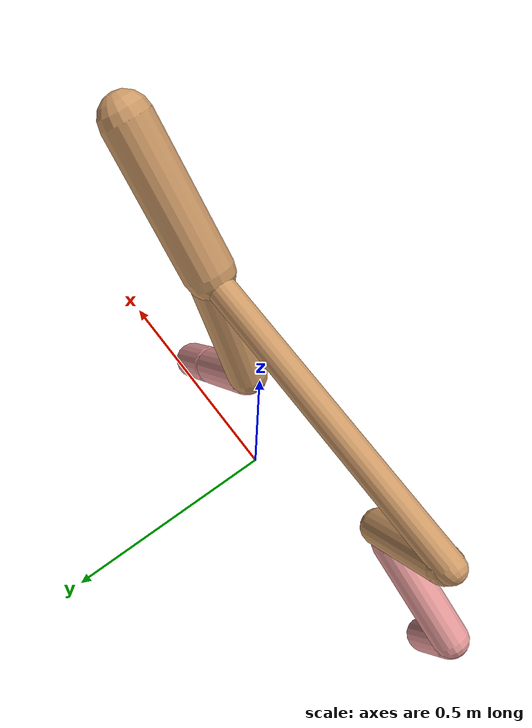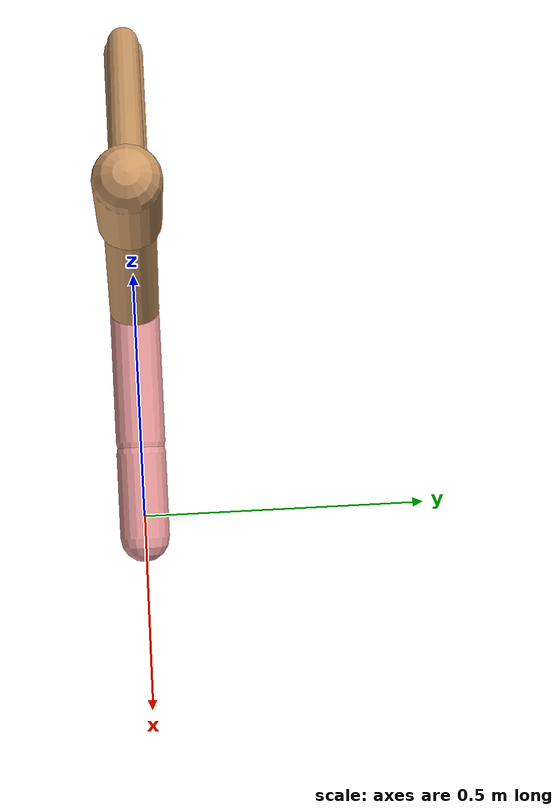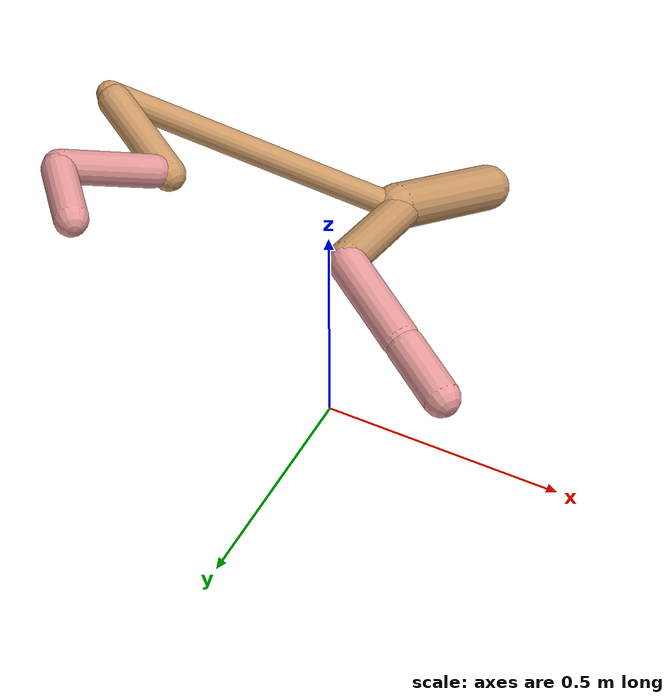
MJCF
<mujoco model="cheetah">
  <compiler angle="radian" coordinate="local" inertiafromgeom="true" settotalmass="14" />
  <default>
    <joint armature=".1" damping=".01" limited="true" solimplimit="0 .8 .03" solreflimit=".02 1" stiffness="8" />
    <geom conaffinity="0" condim="3" contype="1" friction="0.8 .1 .1" rgba="0.8 0.6 .4 1" solimp="0.0 0.8 0.01" solref="0.02 1" />
    <motor ctrllimited="true" ctrlrange="-1 1" />
  </default>
  <size nstack="300000" nuser_geom="1" />
  <option gravity="0 0 -9.81" timestep="0.01" />
  <worldbody>
    <body name="torso" pos="0.0 0.0 0.6897997182736277">
      <joint armature="0" axis="1 0 0" damping="0" limited="false" name="ignorex" pos="0 0 0" stiffness="0" type="slide" />
      <joint armature="0" axis="0 0 1" damping="0" limited="false" name="ignorez" pos="0 0 0" stiffness="0" type="slide" />
      <joint armature="0" axis="0 1 0" damping="0" limited="false" name="ignorey" pos="0 0 0" stiffness="0" type="hinge" />
      <geom fromto="-0.5 0.0 0.0 0.17404759422961935 0.0 0.0" name="torso" size="0.02808995636035714" type="capsule" />
      <geom axisangle="0 1 0 .87" name="head" pos="0.27404759422961933 0.0 0.1" size="0.04990496314676603 0.15" type="capsule" />

      <body name="bthigh" pos="-.5 0 0">
        <joint axis="0 1 0" damping="6" name="bthigh" pos="0 0 0" range="-.52 1.05" stiffness="240" type="hinge" />
        <geom axisangle="0 1 0 -3.8" name="bthigh" pos="0.07602466739994007 0.0 -0.09883206761992208" size="0.034880192687871514 0.10567753082355323" type="capsule" />
        <body name="bshin" pos="0.11204933479988013 0.0 -0.18766413523984415">
          <joint axis="0 1 0" damping="4.5" name="bshin" pos="0 0 0" range="-.785 .785" stiffness="180" type="hinge" />
          <geom axisangle="0 1 0 -2.03" name="bshin" pos="-0.10361611829447925 0.0 -0.05180805914723963" rgba="0.9 0.6 0.6 1" size="0.034880192687871514 0.1093215836105723" type="capsule" />
          <body name="bfoot" pos="-0.2072322365889585 0.0 -0.10361611829447925">
            <joint axis="0 1 0" damping="3" name="bfoot" pos="0 0 0" range="-.4 .785" stiffness="120" type="hinge" />
            <geom axisangle="0 1 0 -.27" name="bfoot" pos="0.022467942670451244 0.0 -0.07264634796779236" rgba="0.9 0.6 0.6 1" size="0.034880192687871514 0.06850819239595865" type="capsule" />
            <inertial mass="10" />
          </body>
        </body>
      </body>
      <body name="fthigh" pos="0.17404759422961935 0.0 0.0">
        <joint axis="0 1 0" damping="4.5" name="fthigh" pos="0 0 0" range="-1.5 0.8" stiffness="180" type="hinge" />
        <geom axisangle="0 1 0 .52" name="fthigh" pos="-0.06928496829176199 0.0 -0.11877423135730626" size="0.04028649750036844 0.13158092314894612" type="capsule" />
        <body name="fshin" pos="-0.13856993658352398 0.0 -0.23754846271461252">
          <joint axis="0 1 0" damping="3" name="fshin" pos="0 0 0" range="-1.2 1.1" stiffness="120" type="hinge" />
          <geom axisangle="0 1 0 -.6" name="fshin" pos="0.06433781394213571 0.0 -0.08908312699680328" rgba="0.9 0.6 0.6 1" size="0.04028649750036844 0.10486900641946081" type="capsule" />
          <body name="ffoot" pos="0.12867562788427142 0.0 -0.17816625399360655">
            <joint axis="0 1 0" damping="1.5" name="ffoot" pos="0 0 0" range="-3.1 -0.3" stiffness="60" type="hinge" />
            <geom axisangle="0 1 0 -.6" name="ffoot" pos="0.044596117589544924 0.0 -0.06937173847262545" rgba="0.9 0.6 0.6 1" size="0.04028649750036844 0.06925311744681376" type="capsule" />
            <inertial mass="10" />
          </body>
        </body>
      </body>
    </body>
  </worldbody>
  <actuator>
    <motor gear="120" joint="bthigh" name="bthigh" />
    <motor gear="90" joint="bshin" name="bshin" />
    <motor gear="60" joint="bfoot" name="bfoot" />
    <motor gear="120" joint="fthigh" name="fthigh" />
    <motor gear="60" joint="fshin" name="fshin" />
    <motor gear="30" joint="ffoot" name="ffoot" />
  </actuator>
</mujoco>
